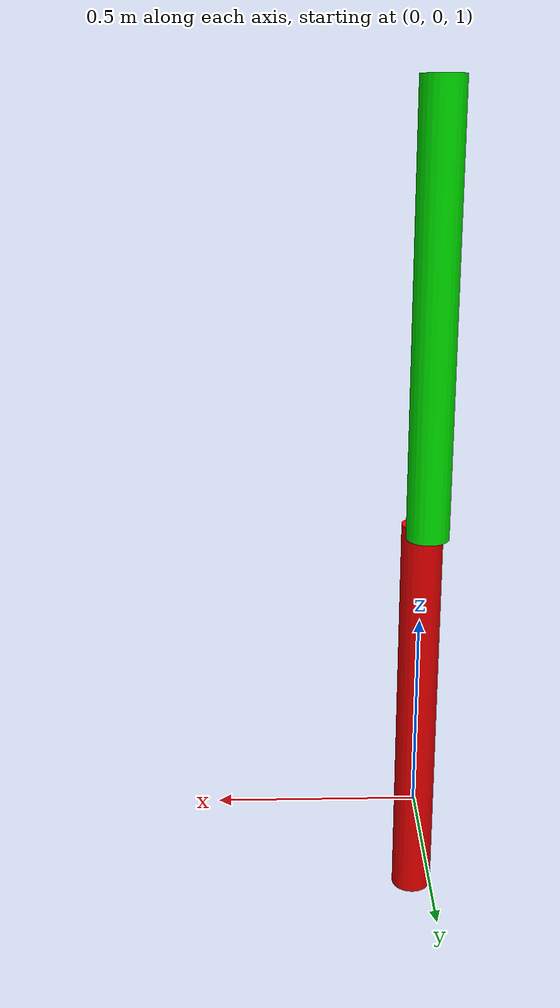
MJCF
<mujoco>
	<option gravity="0 0 -9.81" integrator="RK4">
		<flag energy="enable" contact="disable"/>
	</option>
	<worldbody>
		<light diffuse=".5 .5 .5" pos="0 0 0" dir="0 0 -1"/>
		<geom type="plane" size="1 1 .1" rgba="1 1 1 1"/>
		<body pos="0 0 1.25" euler="0 180 0">
			<joint name="pin1" type="hinge" axis="0 1 0" pos="0 0 .5"/>
			<geom type="cylinder" size=".05 .5" rgba="1 0 0 1" mass="1"/>

			<!--Moved a bit by y-axis to prevent collision-->
			<body pos="0 0.1 -1" euler="0 0 0">
				<joint name="pin2" type="hinge" axis="0 1 0" pos="0 0 0.5"/>
				<geom type="cylinder" size="0.05 0.5" rgba="0 1 0 1" mass="1"/>
 			</body>

		</body>
	</worldbody>

	<actuator>
		<!--Motor gets to know joint from the joint name -->
		<motor joint="pin2" name="torque1" gear="1" ctrllimited="true" ctrlrange="-1000 1000"/>
	</actuator>

</mujoco>
